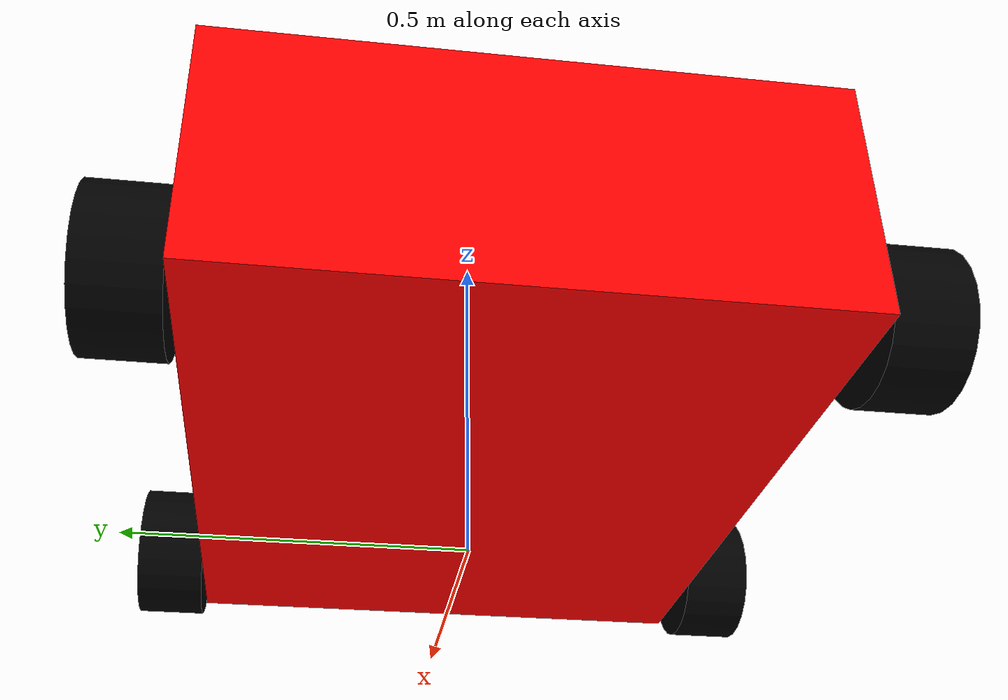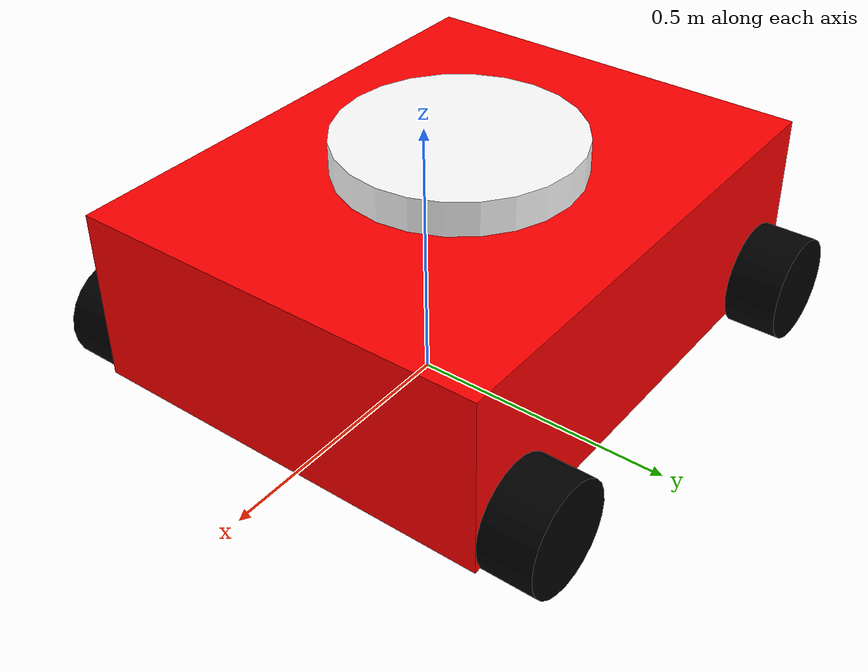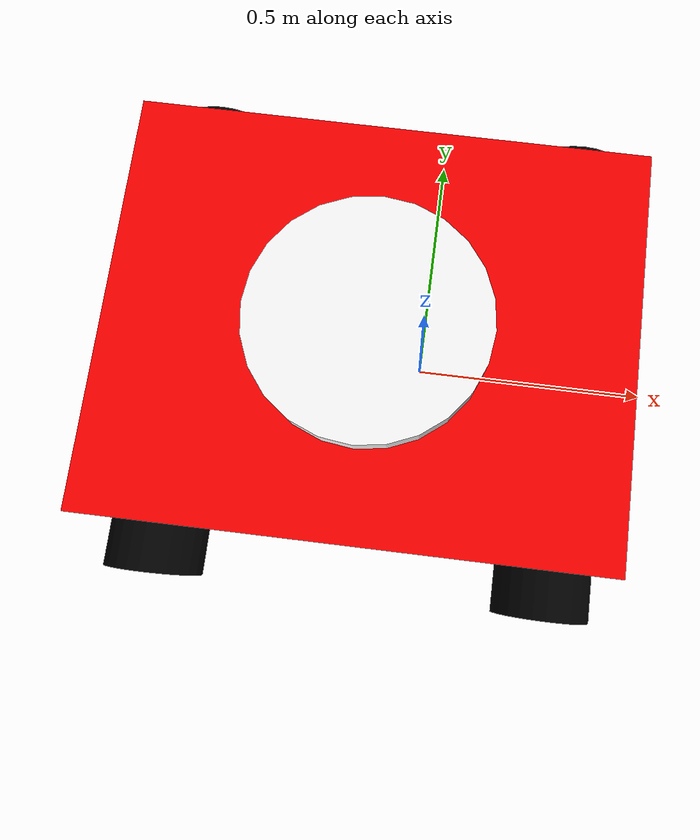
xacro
<?xml version="1.0"?>
<robot xmlns:xacro="http://www.ros.org/wiki/xacro">

<link name="base_link">

</link>

<!-- Chassis  -->

<joint name="chassis_joint" type="fixed">
    <origin xyz="-0.1 0.0 0.05"/>
    <parent link="base_link"/>
    <child link="chassis"/>
</joint>

<link name="chassis">
    <visual name="chassis">
        <origin xyz="0.0 0.0 0.16666665" rpy="0.0 0.0 0.0"/>
        <geometry>
            <box size="1.0 0.8 0.3333333"/>
        </geometry>
        <material name="red">
            <color rgba="1.0 0.0 0.0 1.0"/>
        </material>
    </visual>
    <collision>
        <origin xyz="0.0 0.0 0.05" rpy="0.0 0.0 0.0"/>
        <geometry>
            <box size="1.0 1.0 0.3333333"/>
        </geometry>
    </collision>
    <inertial>
        <origin xyz="0.0 0.0 0.16666665" rpy="0.0 0.0 0.0"/>
        <mass value="10.0"/>
        <inertia ixx="0.625924" ixy="0" ixz="0" iyy="1.36667" iyz="0" izz="0.92592"/>
    </inertial>
</link>

<!-- Front left wheel -->
<joint name="front_left_wheel_joint" type="continuous">
    <origin xyz="0.4 0.45 0.05" rpy="${pi/2} 0.0 0.0"/>
    <parent link="chassis"/>
    <child link="front_left_wheel"/>
    <axis xyz="0.0 0.0 1.0"/>
</joint>

<link name="front_left_wheel">
    <visual name="front_left_wheel">
        <origin xyz="0.0 0.0 0.0" rpy="0.0 0.0 0.0"/>
        <geometry>
            <cylinder radius="0.1" length="0.1"/>
        </geometry>
        <material name="black">
            <color rgba="0.0 0.0 0.0 1.0"/>
        </material>
    </visual>
    <inertial>
        <origin xyz="0.0 0.0 0.0" rpy="0.0 0.0 0.0"/>
        <mass value="1.0"/>
        <inertia ixx="0.003333333" ixy="0" ixz="0" iyy="0.003333333" iyz="0" izz="0.005"/>
    </inertial>
</link>

<!-- Rear left wheel -->
<joint name="rear_left_wheel_joint" type="continuous">
    <origin xyz="-0.4 0.45 0.05" rpy="${pi/2} 0.0 0.0"/>
    <parent link="chassis"/>
    <child link="rear_left_wheel"/>
    <axis xyz="0.0 0.0 1.0"/>
</joint>

<link name="rear_left_wheel">
    <visual name="rear_left_wheel">
        <origin xyz="0.0 0.0 0.0" rpy="0.0 0.0 0.0"/>
        <geometry>
            <cylinder radius="0.1" length="0.1"/>
        </geometry>
        <material name="black">
            <color rgba="0.0 0.0 0.0 1.0"/>
        </material>
    </visual>
    <inertial>
        <origin xyz="0.0 0.0 0.0" rpy="0.0 0.0 0.0"/>
        <mass value="1.0"/>
        <inertia ixx="0.003333333" ixy="0" ixz="0" iyy="0.003333333" iyz="0" izz="0.005"/>
    </inertial>
</link>

<!-- Front right wheel -->
<joint name="front_right_wheel_joint" type="continuous">
    <origin xyz="0.4 -0.45 0.05" rpy="${pi/2} 0.0 0.0"/>
    <parent link="chassis"/>
    <child link="front_right_wheel"/>
    <axis xyz="0.0 0.0 1.0"/>
</joint>

<link name="front_right_wheel">
    <visual name="front_right_wheel">
        <origin xyz="0.0 0.0 0.0" rpy="0.0 0.0 0.0"/>
        <geometry>
            <cylinder radius="0.1" length="0.1"/>
        </geometry>
        <material name="black">
            <color rgba="0.0 0.0 0.0 1.0"/>
        </material>
    </visual>
    <inertial>
        <origin xyz="0.0 0.0 0.0" rpy="0.0 0.0 0.0"/>
        <mass value="1.0"/>
        <inertia ixx="0.003333333" ixy="0" ixz="0" iyy="0.003333333" iyz="0" izz="0.005"/>
    </inertial>
</link>

<!-- Rear right wheel -->
<joint name="rear_right_wheel_joint" type="continuous">
    <origin xyz="-0.4 -0.45 0.05" rpy="${pi/2} 0.0 0.0"/>
    <parent link="chassis"/>
    <child link="rear_right_wheel"/>
    <axis xyz="0.0 0.0 1.0"/>
</joint>

<link name="rear_right_wheel">
    <visual name="rear_right_wheel">
        <origin xyz="0.0 0.0 0.0" rpy="0.0 0.0 0.0"/>
        <geometry>
            <cylinder radius="0.1" length="0.1"/>
        </geometry>
        <material name="black">
            <color rgba="0.0 0.0 0.0 1.0"/>
        </material>
    </visual>
    <inertial>
        <origin xyz="0.0 0.0 0.0" rpy="0.0 0.0 0.0"/>
        <mass value="1.0"/>
        <inertia ixx="0.003333333" ixy="0" ixz="0" iyy="0.003333333" iyz="0" izz="0.005"/>
    </inertial>
</link>

<!-- Lidar -->
<joint name="lidar_joint" type="continuous">
    <origin xyz="0.0 0.0 0.3661417" rpy="0.0 0.0 0.0"/>
    <parent link="chassis"/>
    <child link="lidar"/>
    <axis xyz="0.0 0.0 1.0"/>
</joint>

<link name="lidar">
    <visual name="lidar">
        <origin xyz="0.0 0.0 0.0" rpy="0.0 0.0 0.0"/>
        <geometry>
            <cylinder radius="0.229659" length="0.0656168"/>
        </geometry>
        <material name="white">
            <color rgba="1.0 1.0 1.0 1.0"/>
        </material>
    </visual>
    <inertial>
        <origin xyz="0.0 0.0 0.0" rpy="0.0 0.0 0.0"/>
        <mass value="1.0"/>
        <inertia ixx="0.013544611" ixy="0" ixz="0" iyy="0.013544611" iyz="0" izz="0.026371628"/>
    </inertial>
</link>

</robot>
